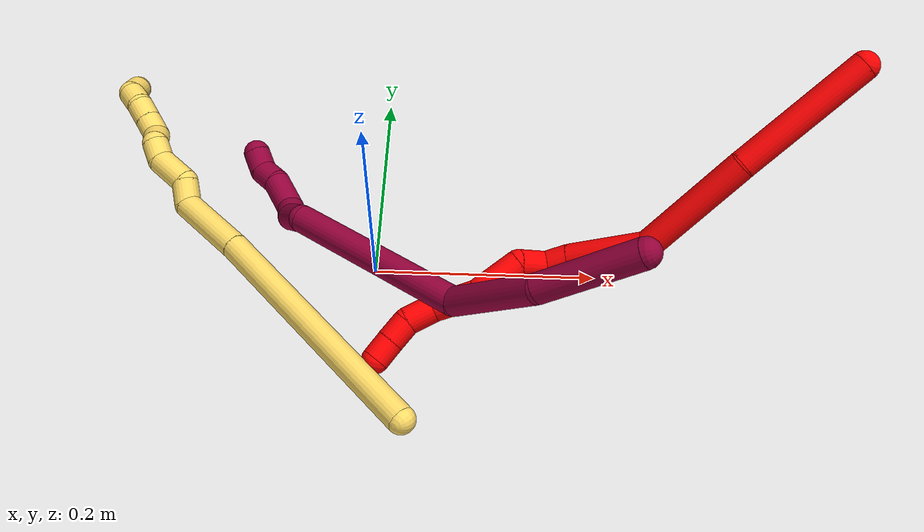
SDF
<sdf version="1.7">
 <world name="default">
  <model name="photoneo_s_sensor">
   <static>1</static>
   <pose>0 0 2 1.57079 1.57079 3.14159</pose>
   <link name="link">
    <inertial><mass>0.1</mass></inertial>
    <sensor name="sensor" type="depth">
     <update_rate>30</update_rate>
     <camera>
      <horizontal_fov>1.22</horizontal_fov>
      <image><width>1920</width><height>1200</height><format>B8G8R8</format></image>
      <clip><near>0.1</near><far>4</far></clip>
      <depth_camera><output>points</output></depth_camera>
     </camera>
     <plugin name="camera_plugin" filename="libgazebo_ros_depth_camera.so">
      <baseline>0.2</baseline>
      <alwaysOn>1</alwaysOn>
      <updateRate>0.0</updateRate>
      <cameraName>camera_ir</cameraName>
      <imageTopicName>/camera/color/image_raw</imageTopicName>
      <cameraInfoTopicName>/camera/color/camera_info</cameraInfoTopicName>
      <depthImageTopicName>/camera/depth/image_raw</depthImageTopicName>
      <depthImageCameraInfoTopicName>/camera/depth/camera_info</depthImageCameraInfoTopicName>
      <pointCloudTopicName>/camera/depth/points</pointCloudTopicName>
      <frameName>fr_optical</frameName>
      <pointCloudCutoff>0.1</pointCloudCutoff>
      <pointCloudCutoffMax>2.0</pointCloudCutoffMax>
      <distortionK1>0</distortionK1>
      <distortionK2>0</distortionK2>
      <distortionK3>0</distortionK3>
      <distortionT1>0</distortionT1>
      <distortionT2>0</distortionT2>
      <CxPrime>0</CxPrime>
      <Cx>0</Cx>
      <Cy>0</Cy>
      <focalLength>0</focalLength>
      <hackBaseline>0</hackBaseline>
     </plugin>
    </sensor>
   </link>
  </model>
  <model name="bin">
   <static>1</static>
   <link name="bottom">
    <collision name="collision-bottom">
     <pose>0 0 -0.01 0 -0 0</pose>
     <geometry><box><size>0.8 0.6 0.02</size></box></geometry>
     <surface>
      <friction><ode><mu>100</mu><mu2>100</mu2></ode></friction>
      <contact><collide_bitmask>65535</collide_bitmask></contact>
     </surface>
    </collision>
   </link>
   <link name="west_wall">
    <collision name="collision-west_wall">
     <pose>-0.41 0 0.1 0 -0 0</pose>
     <geometry><box><size>0.02 0.6 0.2</size></box></geometry>
     <surface>
      <friction><ode><mu>100</mu><mu2>100</mu2></ode></friction>
      <contact><collide_bitmask>65535</collide_bitmask></contact>
     </surface>
    </collision>
   </link>
   <link name="east_wall">
    <collision name="collision-east_wall">
     <pose>0.41 0 0.1 0 -0 0</pose>
     <geometry><box><size>0.02 0.6 0.2</size></box></geometry>
     <surface>
      <friction><ode><mu>100</mu><mu2>100</mu2></ode></friction>
      <contact><collide_bitmask>65535</collide_bitmask></contact>
     </surface>
    </collision>
   </link>
   <link name="south_wall">
    <collision name="collision-south_wall">
     <pose>0 -0.31 0.1 0 -0 0</pose>
     <geometry><box><size>0.8 0.02 0.2</size></box></geometry>
     <surface>
      <friction><ode><mu>100</mu><mu2>100</mu2></ode></friction>
      <contact><collide_bitmask>65535</collide_bitmask></contact>
     </surface>
    </collision>
   </link>
   <link name="north_wall">
    <collision name="collision-north_wall">
     <pose>0 0.31 0.1 0 -0 0</pose>
     <geometry><box><size>0.8 0.02 0.2</size></box></geometry>
     <surface>
      <friction><ode><mu>100</mu><mu2>100</mu2></ode></friction>
      <contact><collide_bitmask>65535</collide_bitmask></contact>
     </surface>
    </collision>
   </link>
  </model>
  <model name="2">
   <static>0</static>
   <link name="2">
    <collision name="collision-cylinder-e_1_1_4">
     <pose>-0.027574 -0.014832 -0.052917 2.86832 -0.465045 -2.0895</pose>
     <geometry><cylinder><radius>0.0125</radius><length>0.122972</length></cylinder></geometry>
     <surface>
      <friction><ode><mu>1.16</mu><mu2>1.16</mu2><slip1>0</slip1><slip2>0</slip2></ode></friction>
      <contact><ode><kp>1e+06</kp><kd>1</kd><max_vel>0</max_vel><min_depth>0.001</min_depth></ode></contact>
     </surface>
    </collision>
    <visual name="visual-cylinder-e_1_1_4">
     <pose>-0.027574 -0.014832 -0.052917 2.86832 -0.465045 -2.0895</pose>
     <geometry><cylinder><radius>0.0125</radius><length>0.122972</length></cylinder></geometry>
     <material><ambient>1 0 0 1</ambient></material>
    </visual>
    <collision name="collision-cylinder-e_2_4_5">
     <pose>-0.076018 -0.033018 -0.153316 3.07107 -0.413194 -2.80812</pose>
     <geometry><cylinder><radius>0.0125</radius><length>0.10395</length></cylinder></geometry>
     <surface>
      <friction><ode><mu>1.16</mu><mu2>1.16</mu2><slip1>0</slip1><slip2>0</slip2></ode></friction>
      <contact><ode><kp>1e+06</kp><kd>1</kd><max_vel>0</max_vel><min_depth>0.001</min_depth></ode></contact>
     </surface>
    </collision>
    <visual name="visual-cylinder-e_2_4_5">
     <pose>-0.076018 -0.033018 -0.153316 3.07107 -0.413194 -2.80812</pose>
     <geometry><cylinder><radius>0.0125</radius><length>0.10395</length></cylinder></geometry>
     <material><ambient>1 0 0 1</ambient></material>
    </visual>
    <collision name="collision-cylinder-e_3_5_6">
     <pose>-0.124216 -0.03178 -0.22215 -2.92974 -0.896573 2.70645</pose>
     <geometry><cylinder><radius>0.0125</radius><length>0.069964</length></cylinder></geometry>
     <surface>
      <friction><ode><mu>1.16</mu><mu2>1.16</mu2><slip1>0</slip1><slip2>0</slip2></ode></friction>
      <contact><ode><kp>1e+06</kp><kd>1</kd><max_vel>0</max_vel><min_depth>0.001</min_depth></ode></contact>
     </surface>
    </collision>
    <visual name="visual-cylinder-e_3_5_6">
     <pose>-0.124216 -0.03178 -0.22215 -2.92974 -0.896573 2.70645</pose>
     <geometry><cylinder><radius>0.0125</radius><length>0.069964</length></cylinder></geometry>
     <material><ambient>1 0 0 1</ambient></material>
    </visual>
    <collision name="collision-cylinder-e_4_6_7">
     <pose>-0.15955 -0.02721 -0.251142 3.13864 -0.808717 -3.13469</pose>
     <geometry><cylinder><radius>0.0125</radius><length>0.022136</length></cylinder></geometry>
     <surface>
      <friction><ode><mu>1.16</mu><mu2>1.16</mu2><slip1>0</slip1><slip2>0</slip2></ode></friction>
      <contact><ode><kp>1e+06</kp><kd>1</kd><max_vel>0</max_vel><min_depth>0.001</min_depth></ode></contact>
     </surface>
    </collision>
    <visual name="visual-cylinder-e_4_6_7">
     <pose>-0.15955 -0.02721 -0.251142 3.13864 -0.808717 -3.13469</pose>
     <geometry><cylinder><radius>0.0125</radius><length>0.022136</length></cylinder></geometry>
     <material><ambient>1 0 0 1</ambient></material>
    </visual>
    <collision name="collision-cylinder-e_5_7_8">
     <pose>-0.17903 -0.033687 -0.260366 1.81124 -1.04582 -1.26746</pose>
     <geometry><cylinder><radius>0.0125</radius><length>0.026519</length></cylinder></geometry>
     <surface>
      <friction><ode><mu>1.16</mu><mu2>1.16</mu2><slip1>0</slip1><slip2>0</slip2></ode></friction>
      <contact><ode><kp>1e+06</kp><kd>1</kd><max_vel>0</max_vel><min_depth>0.001</min_depth></ode></contact>
     </surface>
    </collision>
    <visual name="visual-cylinder-e_5_7_8">
     <pose>-0.17903 -0.033687 -0.260366 1.81124 -1.04582 -1.26746</pose>
     <geometry><cylinder><radius>0.0125</radius><length>0.026519</length></cylinder></geometry>
     <material><ambient>1 0 0 1</ambient></material>
    </visual>
    <collision name="collision-cylinder-e_6_8_9">
     <pose>-0.201649 -0.050574 -0.2782 2.5709 -0.52342 -1.47999</pose>
     <geometry><cylinder><radius>0.0125</radius><length>0.044593</length></cylinder></geometry>
     <surface>
      <friction><ode><mu>1.16</mu><mu2>1.16</mu2><slip1>0</slip1><slip2>0</slip2></ode></friction>
      <contact><ode><kp>1e+06</kp><kd>1</kd><max_vel>0</max_vel><min_depth>0.001</min_depth></ode></contact>
     </surface>
    </collision>
    <visual name="visual-cylinder-e_6_8_9">
     <pose>-0.201649 -0.050574 -0.2782 2.5709 -0.52342 -1.47999</pose>
     <geometry><cylinder><radius>0.0125</radius><length>0.044593</length></cylinder></geometry>
     <material><ambient>1 0 0 1</ambient></material>
    </visual>
    <collision name="collision-cylinder-e_7_9_10">
     <pose>-0.227696 -0.063335 -0.308081 2.97234 -0.822768 -2.7575</pose>
     <geometry><cylinder><radius>0.0125</radius><length>0.040659</length></cylinder></geometry>
     <surface>
      <friction><ode><mu>1.16</mu><mu2>1.16</mu2><slip1>0</slip1><slip2>0</slip2></ode></friction>
      <contact><ode><kp>1e+06</kp><kd>1</kd><max_vel>0</max_vel><min_depth>0.001</min_depth></ode></contact>
     </surface>
    </collision>
    <visual name="visual-cylinder-e_7_9_10">
     <pose>-0.227696 -0.063335 -0.308081 2.97234 -0.822768 -2.7575</pose>
     <geometry><cylinder><radius>0.0125</radius><length>0.040659</length></cylinder></geometry>
     <material><ambient>1 0 0 1</ambient></material>
    </visual>
    <collision name="collision-cylinder-e_8_10_11">
     <pose>-0.250984 -0.071261 -0.330193 2.55835 -0.689914 -1.74968</pose>
     <geometry><cylinder><radius>0.0125</radius><length>0.026351</length></cylinder></geometry>
     <surface>
      <friction><ode><mu>1.16</mu><mu2>1.16</mu2><slip1>0</slip1><slip2>0</slip2></ode></friction>
      <contact><ode><kp>1e+06</kp><kd>1</kd><max_vel>0</max_vel><min_depth>0.001</min_depth></ode></contact>
     </surface>
    </collision>
    <visual name="visual-cylinder-e_8_10_11">
     <pose>-0.250984 -0.071261 -0.330193 2.55835 -0.689914 -1.74968</pose>
     <geometry><cylinder><radius>0.0125</radius><length>0.026351</length></cylinder></geometry>
     <material><ambient>1 0 0 1</ambient></material>
    </visual>
    <collision name="collision-cylinder-e_9_11_12">
     <pose>-0.262471 -0.082412 -0.347653 2.58753 -0.285797 -0.93688</pose>
     <geometry><cylinder><radius>0.0125</radius><length>0.022006</length></cylinder></geometry>
     <surface>
      <friction><ode><mu>1.16</mu><mu2>1.16</mu2><slip1>0</slip1><slip2>0</slip2></ode></friction>
      <contact><ode><kp>1e+06</kp><kd>1</kd><max_vel>0</max_vel><min_depth>0.001</min_depth></ode></contact>
     </surface>
    </collision>
    <visual name="visual-cylinder-e_9_11_12">
     <pose>-0.262471 -0.082412 -0.347653 2.58753 -0.285797 -0.93688</pose>
     <geometry><cylinder><radius>0.0125</radius><length>0.022006</length></cylinder></geometry>
     <material><ambient>1 0 0 1</ambient></material>
    </visual>
    <collision name="collision-cylinder-e_10_12_2">
     <pose>-0.268248 -0.093642 -0.364956 2.54327 -0.259473 -0.8004</pose>
     <geometry><cylinder><radius>0.0125</radius><length>0.020852</length></cylinder></geometry>
     <surface>
      <friction><ode><mu>1.16</mu><mu2>1.16</mu2><slip1>0</slip1><slip2>0</slip2></ode></friction>
      <contact><ode><kp>1e+06</kp><kd>1</kd><max_vel>0</max_vel><min_depth>0.001</min_depth></ode></contact>
     </surface>
    </collision>
    <visual name="visual-cylinder-e_10_12_2">
     <pose>-0.268248 -0.093642 -0.364956 2.54327 -0.259473 -0.8004</pose>
     <geometry><cylinder><radius>0.0125</radius><length>0.020852</length></cylinder></geometry>
     <material><ambient>1 0 0 1</ambient></material>
    </visual>
    <collision name="collision-sphere-2">
     <pose>-0.270923 -0.099318 -0.373282 0 -0 0</pose>
     <geometry><sphere><radius>0.0125</radius></sphere></geometry>
     <surface>
      <friction><ode><mu>1.16</mu><mu2>1.16</mu2><slip1>0</slip1><slip2>0</slip2></ode></friction>
      <contact><ode><kp>1e+06</kp><kd>1</kd><max_vel>0</max_vel><min_depth>0.001</min_depth></ode></contact>
     </surface>
    </collision>
    <visual name="visual-sphere-2">
     <pose>-0.270923 -0.099318 -0.373282 0 -0 0</pose>
     <geometry><sphere><radius>0.0125</radius></sphere></geometry>
     <material><ambient>1 0 0 1</ambient></material>
    </visual>
    <collision name="collision-sphere-12">
     <pose>-0.265573 -0.087966 -0.35663 0 -0 0</pose>
     <geometry><sphere><radius>0.0125</radius></sphere></geometry>
     <surface>
      <friction><ode><mu>1.16</mu><mu2>1.16</mu2><slip1>0</slip1><slip2>0</slip2></ode></friction>
      <contact><ode><kp>1e+06</kp><kd>1</kd><max_vel>0</max_vel><min_depth>0.001</min_depth></ode></contact>
     </surface>
    </collision>
    <visual name="visual-sphere-12">
     <pose>-0.265573 -0.087966 -0.35663 0 -0 0</pose>
     <geometry><sphere><radius>0.0125</radius></sphere></geometry>
     <material><ambient>1 0 0 1</ambient></material>
    </visual>
    <collision name="collision-sphere-11">
     <pose>-0.259369 -0.076858 -0.338675 0 -0 0</pose>
     <geometry><sphere><radius>0.0125</radius></sphere></geometry>
     <surface>
      <friction><ode><mu>1.16</mu><mu2>1.16</mu2><slip1>0</slip1><slip2>0</slip2></ode></friction>
      <contact><ode><kp>1e+06</kp><kd>1</kd><max_vel>0</max_vel><min_depth>0.001</min_depth></ode></contact>
     </surface>
    </collision>
    <visual name="visual-sphere-11">
     <pose>-0.259369 -0.076858 -0.338675 0 -0 0</pose>
     <geometry><sphere><radius>0.0125</radius></sphere></geometry>
     <material><ambient>1 0 0 1</ambient></material>
    </visual>
    <collision name="collision-sphere-10">
     <pose>-0.242598 -0.065665 -0.321711 0 -0 0</pose>
     <geometry><sphere><radius>0.0125</radius></sphere></geometry>
     <surface>
      <friction><ode><mu>1.16</mu><mu2>1.16</mu2><slip1>0</slip1><slip2>0</slip2></ode></friction>
      <contact><ode><kp>1e+06</kp><kd>1</kd><max_vel>0</max_vel><min_depth>0.001</min_depth></ode></contact>
     </surface>
    </collision>
    <visual name="visual-sphere-10">
     <pose>-0.242598 -0.065665 -0.321711 0 -0 0</pose>
     <geometry><sphere><radius>0.0125</radius></sphere></geometry>
     <material><ambient>1 0 0 1</ambient></material>
    </visual>
    <collision name="collision-sphere-9">
     <pose>-0.212794 -0.061006 -0.294451 0 -0 0</pose>
     <geometry><sphere><radius>0.0125</radius></sphere></geometry>
     <surface>
      <friction><ode><mu>1.16</mu><mu2>1.16</mu2><slip1>0</slip1><slip2>0</slip2></ode></friction>
      <contact><ode><kp>1e+06</kp><kd>1</kd><max_vel>0</max_vel><min_depth>0.001</min_depth></ode></contact>
     </surface>
    </collision>
    <visual name="visual-sphere-9">
     <pose>-0.212794 -0.061006 -0.294451 0 -0 0</pose>
     <geometry><sphere><radius>0.0125</radius></sphere></geometry>
     <material><ambient>1 0 0 1</ambient></material>
    </visual>
    <collision name="collision-sphere-4">
     <pose>-0.055148 -0.029664 -0.105834 0 -0 0</pose>
     <geometry><sphere><radius>0.0125</radius></sphere></geometry>
     <surface>
      <friction><ode><mu>1.16</mu><mu2>1.16</mu2><slip1>0</slip1><slip2>0</slip2></ode></friction>
      <contact><ode><kp>1e+06</kp><kd>1</kd><max_vel>0</max_vel><min_depth>0.001</min_depth></ode></contact>
     </surface>
    </collision>
    <visual name="visual-sphere-4">
     <pose>-0.055148 -0.029664 -0.105834 0 -0 0</pose>
     <geometry><sphere><radius>0.0125</radius></sphere></geometry>
     <material><ambient>1 0 0 1</ambient></material>
    </visual>
    <collision name="collision-sphere-1">
     <geometry><sphere><radius>0.0125</radius></sphere></geometry>
     <surface>
      <friction><ode><mu>1.16</mu><mu2>1.16</mu2><slip1>0</slip1><slip2>0</slip2></ode></friction>
      <contact><ode><kp>1e+06</kp><kd>1</kd><max_vel>0</max_vel><min_depth>0.001</min_depth></ode></contact>
     </surface>
    </collision>
    <visual name="visual-sphere-1">
     <geometry><sphere><radius>0.0125</radius></sphere></geometry>
     <material><ambient>1 0 0 1</ambient></material>
    </visual>
    <collision name="collision-sphere-8">
     <pose>-0.190504 -0.040141 -0.261949 0 -0 0</pose>
     <geometry><sphere><radius>0.0125</radius></sphere></geometry>
     <surface>
      <friction><ode><mu>1.16</mu><mu2>1.16</mu2><slip1>0</slip1><slip2>0</slip2></ode></friction>
      <contact><ode><kp>1e+06</kp><kd>1</kd><max_vel>0</max_vel><min_depth>0.001</min_depth></ode></contact>
     </surface>
    </collision>
    <visual name="visual-sphere-8">
     <pose>-0.190504 -0.040141 -0.261949 0 -0 0</pose>
     <geometry><sphere><radius>0.0125</radius></sphere></geometry>
     <material><ambient>1 0 0 1</ambient></material>
    </visual>
    <collision name="collision-sphere-5">
     <pose>-0.096888 -0.036372 -0.200799 0 -0 0</pose>
     <geometry><sphere><radius>0.0125</radius></sphere></geometry>
     <surface>
      <friction><ode><mu>1.16</mu><mu2>1.16</mu2><slip1>0</slip1><slip2>0</slip2></ode></friction>
      <contact><ode><kp>1e+06</kp><kd>1</kd><max_vel>0</max_vel><min_depth>0.001</min_depth></ode></contact>
     </surface>
    </collision>
    <visual name="visual-sphere-5">
     <pose>-0.096888 -0.036372 -0.200799 0 -0 0</pose>
     <geometry><sphere><radius>0.0125</radius></sphere></geometry>
     <material><ambient>1 0 0 1</ambient></material>
    </visual>
    <collision name="collision-sphere-6">
     <pose>-0.151543 -0.027188 -0.2435 0 -0 0</pose>
     <geometry><sphere><radius>0.0125</radius></sphere></geometry>
     <surface>
      <friction><ode><mu>1.16</mu><mu2>1.16</mu2><slip1>0</slip1><slip2>0</slip2></ode></friction>
      <contact><ode><kp>1e+06</kp><kd>1</kd><max_vel>0</max_vel><min_depth>0.001</min_depth></ode></contact>
     </surface>
    </collision>
    <visual name="visual-sphere-6">
     <pose>-0.151543 -0.027188 -0.2435 0 -0 0</pose>
     <geometry><sphere><radius>0.0125</radius></sphere></geometry>
     <material><ambient>1 0 0 1</ambient></material>
    </visual>
    <collision name="collision-sphere-7">
     <pose>-0.167556 -0.027233 -0.258784 0 -0 0</pose>
     <geometry><sphere><radius>0.0125</radius></sphere></geometry>
     <surface>
      <friction><ode><mu>1.16</mu><mu2>1.16</mu2><slip1>0</slip1><slip2>0</slip2></ode></friction>
      <contact><ode><kp>1e+06</kp><kd>1</kd><max_vel>0</max_vel><min_depth>0.001</min_depth></ode></contact>
     </surface>
    </collision>
    <visual name="visual-sphere-7">
     <pose>-0.167556 -0.027233 -0.258784 0 -0 0</pose>
     <geometry><sphere><radius>0.0125</radius></sphere></geometry>
     <material><ambient>1 0 0 1</ambient></material>
    </visual>
    <inertial>
     <pose>-0.128992 -0.038899 -0.198688 0 -0 0</pose>
     <mass>0.5</mass>
     <inertia><ixx>-0.000358</ixx><ixy>0</ixy><ixz>0</ixz><iyy>6e-05</iyy><iyz>0</iyz><izz>0.000172</izz></inertia>
    </inertial>
   </link>
   <pose>0.398593 0.073394 0.212861 -0.586814 0.18581 -0.331564</pose>
  </model>
  <model name="5">
   <static>0</static>
   <link name="5">
    <collision name="collision-cylinder-e_1_1_4">
     <pose>-0.086309 0.079502 -0.036324 -1.99937 -0.779076 1.13706</pose>
     <geometry><cylinder><radius>0.0125</radius><length>0.245677</length></cylinder></geometry>
     <surface>
      <friction><ode><mu>1.16</mu><mu2>1.16</mu2><slip1>0</slip1><slip2>0</slip2></ode></friction>
      <contact><ode><kp>1e+06</kp><kd>1</kd><max_vel>0</max_vel><min_depth>0.001</min_depth></ode></contact>
     </surface>
    </collision>
    <visual name="visual-cylinder-e_1_1_4">
     <pose>-0.086309 0.079502 -0.036324 -1.99937 -0.779076 1.13706</pose>
     <geometry><cylinder><radius>0.0125</radius><length>0.245677</length></cylinder></geometry>
     <material><ambient>1 0.858824 0.4 1</ambient></material>
    </visual>
    <collision name="collision-cylinder-e_2_4_5">
     <pose>-0.200104 0.182797 -0.081703 -1.93446 -0.823689 1.12959</pose>
     <geometry><cylinder><radius>0.0125</radius><length>0.074928</length></cylinder></geometry>
     <surface>
      <friction><ode><mu>1.16</mu><mu2>1.16</mu2><slip1>0</slip1><slip2>0</slip2></ode></friction>
      <contact><ode><kp>1e+06</kp><kd>1</kd><max_vel>0</max_vel><min_depth>0.001</min_depth></ode></contact>
     </surface>
    </collision>
    <visual name="visual-cylinder-e_2_4_5">
     <pose>-0.200104 0.182797 -0.081703 -1.93446 -0.823689 1.12959</pose>
     <geometry><cylinder><radius>0.0125</radius><length>0.074928</length></cylinder></geometry>
     <material><ambient>1 0.858824 0.4 1</ambient></material>
    </visual>
    <collision name="collision-cylinder-e_3_5_6">
     <pose>-0.228569 0.217015 -0.096042 -2.03984 -0.083621 0.135991</pose>
     <geometry><cylinder><radius>0.0125</radius><length>0.023457</length></cylinder></geometry>
     <surface>
      <friction><ode><mu>1.16</mu><mu2>1.16</mu2><slip1>0</slip1><slip2>0</slip2></ode></friction>
      <contact><ode><kp>1e+06</kp><kd>1</kd><max_vel>0</max_vel><min_depth>0.001</min_depth></ode></contact>
     </surface>
    </collision>
    <visual name="visual-cylinder-e_3_5_6">
     <pose>-0.228569 0.217015 -0.096042 -2.03984 -0.083621 0.135991</pose>
     <geometry><cylinder><radius>0.0125</radius><length>0.023457</length></cylinder></geometry>
     <material><ambient>1 0.858824 0.4 1</ambient></material>
    </visual>
    <collision name="collision-cylinder-e_4_6_7">
     <pose>-0.241725 0.240346 -0.104031 -1.77753 -0.745586 0.897658</pose>
     <geometry><cylinder><radius>0.0125</radius><length>0.035897</length></cylinder></geometry>
     <surface>
      <friction><ode><mu>1.16</mu><mu2>1.16</mu2><slip1>0</slip1><slip2>0</slip2></ode></friction>
      <contact><ode><kp>1e+06</kp><kd>1</kd><max_vel>0</max_vel><min_depth>0.001</min_depth></ode></contact>
     </surface>
    </collision>
    <visual name="visual-cylinder-e_4_6_7">
     <pose>-0.241725 0.240346 -0.104031 -1.77753 -0.745586 0.897658</pose>
     <geometry><cylinder><radius>0.0125</radius><length>0.035897</length></cylinder></geometry>
     <material><ambient>1 0.858824 0.4 1</ambient></material>
    </visual>
    <collision name="collision-cylinder-e_5_7_8">
     <pose>-0.257011 0.261833 -0.110848 -2.01749 -0.315802 0.495257</pose>
     <geometry><cylinder><radius>0.0125</radius><length>0.020019</length></cylinder></geometry>
     <surface>
      <friction><ode><mu>1.16</mu><mu2>1.16</mu2><slip1>0</slip1><slip2>0</slip2></ode></friction>
      <contact><ode><kp>1e+06</kp><kd>1</kd><max_vel>0</max_vel><min_depth>0.001</min_depth></ode></contact>
     </surface>
    </collision>
    <visual name="visual-cylinder-e_5_7_8">
     <pose>-0.257011 0.261833 -0.110848 -2.01749 -0.315802 0.495257</pose>
     <geometry><cylinder><radius>0.0125</radius><length>0.020019</length></cylinder></geometry>
     <material><ambient>1 0.858824 0.4 1</ambient></material>
    </visual>
    <collision name="collision-cylinder-e_6_8_9">
     <pose>-0.265839 0.273169 -0.122686 -2.79917 -0.608847 2.13543</pose>
     <geometry><cylinder><radius>0.0125</radius><length>0.020001</length></cylinder></geometry>
     <surface>
      <friction><ode><mu>1.16</mu><mu2>1.16</mu2><slip1>0</slip1><slip2>0</slip2></ode></friction>
      <contact><ode><kp>1e+06</kp><kd>1</kd><max_vel>0</max_vel><min_depth>0.001</min_depth></ode></contact>
     </surface>
    </collision>
    <visual name="visual-cylinder-e_6_8_9">
     <pose>-0.265839 0.273169 -0.122686 -2.79917 -0.608847 2.13543</pose>
     <geometry><cylinder><radius>0.0125</radius><length>0.020001</length></cylinder></geometry>
     <material><ambient>1 0.858824 0.4 1</ambient></material>
    </visual>
    <collision name="collision-cylinder-e_7_9_10">
     <pose>-0.275854 0.284416 -0.133486 -1.918 -0.443949 0.622463</pose>
     <geometry><cylinder><radius>0.0125</radius><length>0.020002</length></cylinder></geometry>
     <surface>
      <friction><ode><mu>1.16</mu><mu2>1.16</mu2><slip1>0</slip1><slip2>0</slip2></ode></friction>
      <contact><ode><kp>1e+06</kp><kd>1</kd><max_vel>0</max_vel><min_depth>0.001</min_depth></ode></contact>
     </surface>
    </collision>
    <visual name="visual-cylinder-e_7_9_10">
     <pose>-0.275854 0.284416 -0.133486 -1.918 -0.443949 0.622463</pose>
     <geometry><cylinder><radius>0.0125</radius><length>0.020002</length></cylinder></geometry>
     <material><ambient>1 0.858824 0.4 1</ambient></material>
    </visual>
    <collision name="collision-cylinder-e_8_10_11">
     <pose>-0.284414 0.301476 -0.139478 -1.8991 -0.440286 0.605983</pose>
     <geometry><cylinder><radius>0.0125</radius><length>0.020012</length></cylinder></geometry>
     <surface>
      <friction><ode><mu>1.16</mu><mu2>1.16</mu2><slip1>0</slip1><slip2>0</slip2></ode></friction>
      <contact><ode><kp>1e+06</kp><kd>1</kd><max_vel>0</max_vel><min_depth>0.001</min_depth></ode></contact>
     </surface>
    </collision>
    <visual name="visual-cylinder-e_8_10_11">
     <pose>-0.284414 0.301476 -0.139478 -1.8991 -0.440286 0.605983</pose>
     <geometry><cylinder><radius>0.0125</radius><length>0.020012</length></cylinder></geometry>
     <material><ambient>1 0.858824 0.4 1</ambient></material>
    </visual>
    <collision name="collision-cylinder-e_9_11_12">
     <pose>-0.295155 0.316505 -0.146444 -2.13043 -0.704269 1.172</pose>
     <geometry><cylinder><radius>0.0125</radius><length>0.020006</length></cylinder></geometry>
     <surface>
      <friction><ode><mu>1.16</mu><mu2>1.16</mu2><slip1>0</slip1><slip2>0</slip2></ode></friction>
      <contact><ode><kp>1e+06</kp><kd>1</kd><max_vel>0</max_vel><min_depth>0.001</min_depth></ode></contact>
     </surface>
    </collision>
    <visual name="visual-cylinder-e_9_11_12">
     <pose>-0.295155 0.316505 -0.146444 -2.13043 -0.704269 1.172</pose>
     <geometry><cylinder><radius>0.0125</radius><length>0.020006</length></cylinder></geometry>
     <material><ambient>1 0.858824 0.4 1</ambient></material>
    </visual>
    <collision name="collision-cylinder-e_10_12_2">
     <pose>-0.306017 0.324056 -0.159412 -3.02001 -0.453971 2.62624</pose>
     <geometry><cylinder><radius>0.0125</radius><length>0.02</length></cylinder></geometry>
     <surface>
      <friction><ode><mu>1.16</mu><mu2>1.16</mu2><slip1>0</slip1><slip2>0</slip2></ode></friction>
      <contact><ode><kp>1e+06</kp><kd>1</kd><max_vel>0</max_vel><min_depth>0.001</min_depth></ode></contact>
     </surface>
    </collision>
    <visual name="visual-cylinder-e_10_12_2">
     <pose>-0.306017 0.324056 -0.159412 -3.02001 -0.453971 2.62624</pose>
     <geometry><cylinder><radius>0.0125</radius><length>0.02</length></cylinder></geometry>
     <material><ambient>1 0.858824 0.4 1</ambient></material>
    </visual>
    <collision name="collision-sphere-2">
     <pose>-0.310403 0.325146 -0.168332 0 -0 0</pose>
     <geometry><sphere><radius>0.0125</radius></sphere></geometry>
     <surface>
      <friction><ode><mu>1.16</mu><mu2>1.16</mu2><slip1>0</slip1><slip2>0</slip2></ode></friction>
      <contact><ode><kp>1e+06</kp><kd>1</kd><max_vel>0</max_vel><min_depth>0.001</min_depth></ode></contact>
     </surface>
    </collision>
    <visual name="visual-sphere-2">
     <pose>-0.310403 0.325146 -0.168332 0 -0 0</pose>
     <geometry><sphere><radius>0.0125</radius></sphere></geometry>
     <material><ambient>1 0.858824 0.4 1</ambient></material>
    </visual>
    <collision name="collision-sphere-12">
     <pose>-0.301632 0.322965 -0.150491 0 -0 0</pose>
     <geometry><sphere><radius>0.0125</radius></sphere></geometry>
     <surface>
      <friction><ode><mu>1.16</mu><mu2>1.16</mu2><slip1>0</slip1><slip2>0</slip2></ode></friction>
      <contact><ode><kp>1e+06</kp><kd>1</kd><max_vel>0</max_vel><min_depth>0.001</min_depth></ode></contact>
     </surface>
    </collision>
    <visual name="visual-sphere-12">
     <pose>-0.301632 0.322965 -0.150491 0 -0 0</pose>
     <geometry><sphere><radius>0.0125</radius></sphere></geometry>
     <material><ambient>1 0.858824 0.4 1</ambient></material>
    </visual>
    <collision name="collision-sphere-11">
     <pose>-0.288678 0.310045 -0.142397 0 -0 0</pose>
     <geometry><sphere><radius>0.0125</radius></sphere></geometry>
     <surface>
      <friction><ode><mu>1.16</mu><mu2>1.16</mu2><slip1>0</slip1><slip2>0</slip2></ode></friction>
      <contact><ode><kp>1e+06</kp><kd>1</kd><max_vel>0</max_vel><min_depth>0.001</min_depth></ode></contact>
     </surface>
    </collision>
    <visual name="visual-sphere-11">
     <pose>-0.288678 0.310045 -0.142397 0 -0 0</pose>
     <geometry><sphere><radius>0.0125</radius></sphere></geometry>
     <material><ambient>1 0.858824 0.4 1</ambient></material>
    </visual>
    <collision name="collision-sphere-10">
     <pose>-0.280149 0.292908 -0.136559 0 -0 0</pose>
     <geometry><sphere><radius>0.0125</radius></sphere></geometry>
     <surface>
      <friction><ode><mu>1.16</mu><mu2>1.16</mu2><slip1>0</slip1><slip2>0</slip2></ode></friction>
      <contact><ode><kp>1e+06</kp><kd>1</kd><max_vel>0</max_vel><min_depth>0.001</min_depth></ode></contact>
     </surface>
    </collision>
    <visual name="visual-sphere-10">
     <pose>-0.280149 0.292908 -0.136559 0 -0 0</pose>
     <geometry><sphere><radius>0.0125</radius></sphere></geometry>
     <material><ambient>1 0.858824 0.4 1</ambient></material>
    </visual>
    <collision name="collision-sphere-9">
     <pose>-0.271558 0.275923 -0.130413 0 -0 0</pose>
     <geometry><sphere><radius>0.0125</radius></sphere></geometry>
     <surface>
      <friction><ode><mu>1.16</mu><mu2>1.16</mu2><slip1>0</slip1><slip2>0</slip2></ode></friction>
      <contact><ode><kp>1e+06</kp><kd>1</kd><max_vel>0</max_vel><min_depth>0.001</min_depth></ode></contact>
     </surface>
    </collision>
    <visual name="visual-sphere-9">
     <pose>-0.271558 0.275923 -0.130413 0 -0 0</pose>
     <geometry><sphere><radius>0.0125</radius></sphere></geometry>
     <material><ambient>1 0.858824 0.4 1</ambient></material>
    </visual>
    <collision name="collision-sphere-4">
     <pose>-0.172618 0.159005 -0.072648 0 -0 0</pose>
     <geometry><sphere><radius>0.0125</radius></sphere></geometry>
     <surface>
      <friction><ode><mu>1.16</mu><mu2>1.16</mu2><slip1>0</slip1><slip2>0</slip2></ode></friction>
      <contact><ode><kp>1e+06</kp><kd>1</kd><max_vel>0</max_vel><min_depth>0.001</min_depth></ode></contact>
     </surface>
    </collision>
    <visual name="visual-sphere-4">
     <pose>-0.172618 0.159005 -0.072648 0 -0 0</pose>
     <geometry><sphere><radius>0.0125</radius></sphere></geometry>
     <material><ambient>1 0.858824 0.4 1</ambient></material>
    </visual>
    <collision name="collision-sphere-1">
     <geometry><sphere><radius>0.0125</radius></sphere></geometry>
     <surface>
      <friction><ode><mu>1.16</mu><mu2>1.16</mu2><slip1>0</slip1><slip2>0</slip2></ode></friction>
      <contact><ode><kp>1e+06</kp><kd>1</kd><max_vel>0</max_vel><min_depth>0.001</min_depth></ode></contact>
     </surface>
    </collision>
    <visual name="visual-sphere-1">
     <geometry><sphere><radius>0.0125</radius></sphere></geometry>
     <material><ambient>1 0.858824 0.4 1</ambient></material>
    </visual>
    <collision name="collision-sphere-8">
     <pose>-0.260119 0.270414 -0.114959 0 -0 0</pose>
     <geometry><sphere><radius>0.0125</radius></sphere></geometry>
     <surface>
      <friction><ode><mu>1.16</mu><mu2>1.16</mu2><slip1>0</slip1><slip2>0</slip2></ode></friction>
      <contact><ode><kp>1e+06</kp><kd>1</kd><max_vel>0</max_vel><min_depth>0.001</min_depth></ode></contact>
     </surface>
    </collision>
    <visual name="visual-sphere-8">
     <pose>-0.260119 0.270414 -0.114959 0 -0 0</pose>
     <geometry><sphere><radius>0.0125</radius></sphere></geometry>
     <material><ambient>1 0.858824 0.4 1</ambient></material>
    </visual>
    <collision name="collision-sphere-5">
     <pose>-0.22759 0.20659 -0.090759 0 -0 0</pose>
     <geometry><sphere><radius>0.0125</radius></sphere></geometry>
     <surface>
      <friction><ode><mu>1.16</mu><mu2>1.16</mu2><slip1>0</slip1><slip2>0</slip2></ode></friction>
      <contact><ode><kp>1e+06</kp><kd>1</kd><max_vel>0</max_vel><min_depth>0.001</min_depth></ode></contact>
     </surface>
    </collision>
    <visual name="visual-sphere-5">
     <pose>-0.22759 0.20659 -0.090759 0 -0 0</pose>
     <geometry><sphere><radius>0.0125</radius></sphere></geometry>
     <material><ambient>1 0.858824 0.4 1</ambient></material>
    </visual>
    <collision name="collision-sphere-6">
     <pose>-0.229549 0.22744 -0.101325 0 -0 0</pose>
     <geometry><sphere><radius>0.0125</radius></sphere></geometry>
     <surface>
      <friction><ode><mu>1.16</mu><mu2>1.16</mu2><slip1>0</slip1><slip2>0</slip2></ode></friction>
      <contact><ode><kp>1e+06</kp><kd>1</kd><max_vel>0</max_vel><min_depth>0.001</min_depth></ode></contact>
     </surface>
    </collision>
    <visual name="visual-sphere-6">
     <pose>-0.229549 0.22744 -0.101325 0 -0 0</pose>
     <geometry><sphere><radius>0.0125</radius></sphere></geometry>
     <material><ambient>1 0.858824 0.4 1</ambient></material>
    </visual>
    <collision name="collision-sphere-7">
     <pose>-0.253902 0.253252 -0.106738 0 -0 0</pose>
     <geometry><sphere><radius>0.0125</radius></sphere></geometry>
     <surface>
      <friction><ode><mu>1.16</mu><mu2>1.16</mu2><slip1>0</slip1><slip2>0</slip2></ode></friction>
      <contact><ode><kp>1e+06</kp><kd>1</kd><max_vel>0</max_vel><min_depth>0.001</min_depth></ode></contact>
     </surface>
    </collision>
    <visual name="visual-sphere-7">
     <pose>-0.253902 0.253252 -0.106738 0 -0 0</pose>
     <geometry><sphere><radius>0.0125</radius></sphere></geometry>
     <material><ambient>1 0.858824 0.4 1</ambient></material>
    </visual>
    <inertial>
     <pose>-0.167866 0.164375 -0.074571 0 -0 0</pose>
     <mass>0.5</mass>
     <inertia>
      <ixx>0.001201</ixx>
      <ixy>0</ixy>
      <ixz>0</ixz>
      <iyy>0.001387</iyy>
      <iyz>0</iyz>
      <izz>5.7e-05</izz>
     </inertia>
    </inertial>
   </link>
   <pose>0.036511 -0.171342 0.046795 1.03515 -0.654555 -0.200272</pose>
  </model>
  <model name="8">
   <static>0</static>
   <link name="8">
    <collision name="collision-cylinder-e_1_1_4">
     <pose>0.004455 0.0003 -0.046242 -3.1351 0.096037 -3.00665</pose>
     <geometry><cylinder><radius>0.0125</radius><length>0.092914</length></cylinder></geometry>
     <surface>
      <friction><ode><mu>1.16</mu><mu2>1.16</mu2><slip1>0</slip1><slip2>0</slip2></ode></friction>
      <contact><ode><kp>1e+06</kp><kd>1</kd><max_vel>0</max_vel><min_depth>0.001</min_depth></ode></contact>
     </surface>
    </collision>
    <visual name="visual-cylinder-e_1_1_4">
     <pose>0.004455 0.0003 -0.046242 -3.1351 0.096037 -3.00665</pose>
     <geometry><cylinder><radius>0.0125</radius><length>0.092914</length></cylinder></geometry>
     <material><ambient>0.584314 0 0.227451 1</ambient></material>
    </visual>
    <collision name="collision-cylinder-e_2_4_5">
     <pose>0.01381 0.015568 -0.136872 -2.81638 0.104228 -0.615687</pose>
     <geometry><cylinder><radius>0.0125</radius><length>0.094199</length></cylinder></geometry>
     <surface>
      <friction><ode><mu>1.16</mu><mu2>1.16</mu2><slip1>0</slip1><slip2>0</slip2></ode></friction>
      <contact><ode><kp>1e+06</kp><kd>1</kd><max_vel>0</max_vel><min_depth>0.001</min_depth></ode></contact>
     </surface>
    </collision>
    <visual name="visual-cylinder-e_2_4_5">
     <pose>0.01381 0.015568 -0.136872 -2.81638 0.104228 -0.615687</pose>
     <geometry><cylinder><radius>0.0125</radius><length>0.094199</length></cylinder></geometry>
     <material><ambient>0.584314 0 0.227451 1</ambient></material>
    </visual>
    <collision name="collision-cylinder-e_3_5_6">
     <pose>-0.022292 0.063005 -0.25219 -2.71228 -0.483926 1.69449</pose>
     <geometry><cylinder><radius>0.0125</radius><length>0.176254</length></cylinder></geometry>
     <surface>
      <friction><ode><mu>1.16</mu><mu2>1.16</mu2><slip1>0</slip1><slip2>0</slip2></ode></friction>
      <contact><ode><kp>1e+06</kp><kd>1</kd><max_vel>0</max_vel><min_depth>0.001</min_depth></ode></contact>
     </surface>
    </collision>
    <visual name="visual-cylinder-e_3_5_6">
     <pose>-0.022292 0.063005 -0.25219 -2.71228 -0.483926 1.69449</pose>
     <geometry><cylinder><radius>0.0125</radius><length>0.176254</length></cylinder></geometry>
     <material><ambient>0.584314 0 0.227451 1</ambient></material>
    </visual>
    <collision name="collision-cylinder-e_4_6_7">
     <pose>-0.060915 0.108334 -0.337317 -2.40568 0.123576 -0.318242</pose>
     <geometry><cylinder><radius>0.0125</radius><length>0.038605</length></cylinder></geometry>
     <surface>
      <friction><ode><mu>1.16</mu><mu2>1.16</mu2><slip1>0</slip1><slip2>0</slip2></ode></friction>
      <contact><ode><kp>1e+06</kp><kd>1</kd><max_vel>0</max_vel><min_depth>0.001</min_depth></ode></contact>
     </surface>
    </collision>
    <visual name="visual-cylinder-e_4_6_7">
     <pose>-0.060915 0.108334 -0.337317 -2.40568 0.123576 -0.318242</pose>
     <geometry><cylinder><radius>0.0125</radius><length>0.038605</length></cylinder></geometry>
     <material><ambient>0.584314 0 0.227451 1</ambient></material>
    </visual>
    <collision name="collision-cylinder-e_5_7_8">
     <pose>-0.059182 0.130449 -0.356336 -2.05095 -0.061838 0.101872</pose>
     <geometry><cylinder><radius>0.0125</radius><length>0.020914</length></cylinder></geometry>
     <surface>
      <friction><ode><mu>1.16</mu><mu2>1.16</mu2><slip1>0</slip1><slip2>0</slip2></ode></friction>
      <contact><ode><kp>1e+06</kp><kd>1</kd><max_vel>0</max_vel><min_depth>0.001</min_depth></ode></contact>
     </surface>
    </collision>
    <visual name="visual-cylinder-e_5_7_8">
     <pose>-0.059182 0.130449 -0.356336 -2.05095 -0.061838 0.101872</pose>
     <geometry><cylinder><radius>0.0125</radius><length>0.020914</length></cylinder></geometry>
     <material><ambient>0.584314 0 0.227451 1</ambient></material>
    </visual>
    <collision name="collision-cylinder-e_6_8_9">
     <pose>-0.071027 0.150391 -0.368968 -2.20205 -0.70226 1.25007</pose>
     <geometry><cylinder><radius>0.0125</radius><length>0.034676</length></cylinder></geometry>
     <surface>
      <friction><ode><mu>1.16</mu><mu2>1.16</mu2><slip1>0</slip1><slip2>0</slip2></ode></friction>
      <contact><ode><kp>1e+06</kp><kd>1</kd><max_vel>0</max_vel><min_depth>0.001</min_depth></ode></contact>
     </surface>
    </collision>
    <visual name="visual-cylinder-e_6_8_9">
     <pose>-0.071027 0.150391 -0.368968 -2.20205 -0.70226 1.25007</pose>
     <geometry><cylinder><radius>0.0125</radius><length>0.034676</length></cylinder></geometry>
     <material><ambient>0.584314 0 0.227451 1</ambient></material>
    </visual>
    <collision name="collision-cylinder-e_7_9_10">
     <pose>-0.087576 0.166592 -0.384582 -2.52624 -0.510331 1.3747</pose>
     <geometry><cylinder><radius>0.0125</radius><length>0.021902</length></cylinder></geometry>
     <surface>
      <friction><ode><mu>1.16</mu><mu2>1.16</mu2><slip1>0</slip1><slip2>0</slip2></ode></friction>
      <contact><ode><kp>1e+06</kp><kd>1</kd><max_vel>0</max_vel><min_depth>0.001</min_depth></ode></contact>
     </surface>
    </collision>
    <visual name="visual-cylinder-e_7_9_10">
     <pose>-0.087576 0.166592 -0.384582 -2.52624 -0.510331 1.3747</pose>
     <geometry><cylinder><radius>0.0125</radius><length>0.021902</length></cylinder></geometry>
     <material><ambient>0.584314 0 0.227451 1</ambient></material>
    </visual>
    <collision name="collision-cylinder-e_8_10_2">
     <pose>-0.100949 0.177945 -0.395025 -1.99559 -0.897018 1.28165</pose>
     <geometry><cylinder><radius>0.0125</radius><length>0.020535</length></cylinder></geometry>
     <surface>
      <friction><ode><mu>1.16</mu><mu2>1.16</mu2><slip1>0</slip1><slip2>0</slip2></ode></friction>
      <contact><ode><kp>1e+06</kp><kd>1</kd><max_vel>0</max_vel><min_depth>0.001</min_depth></ode></contact>
     </surface>
    </collision>
    <visual name="visual-cylinder-e_8_10_2">
     <pose>-0.100949 0.177945 -0.395025 -1.99559 -0.897018 1.28165</pose>
     <geometry><cylinder><radius>0.0125</radius><length>0.020535</length></cylinder></geometry>
     <material><ambient>0.584314 0 0.227451 1</ambient></material>
    </visual>
    <collision name="collision-sphere-2">
     <pose>-0.108973 0.183782 -0.397666 0 -0 0</pose>
     <geometry><sphere><radius>0.0125</radius></sphere></geometry>
     <surface>
      <friction><ode><mu>1.16</mu><mu2>1.16</mu2><slip1>0</slip1><slip2>0</slip2></ode></friction>
      <contact><ode><kp>1e+06</kp><kd>1</kd><max_vel>0</max_vel><min_depth>0.001</min_depth></ode></contact>
     </surface>
    </collision>
    <visual name="visual-sphere-2">
     <pose>-0.108973 0.183782 -0.397666 0 -0 0</pose>
     <geometry><sphere><radius>0.0125</radius></sphere></geometry>
     <material><ambient>0.584314 0 0.227451 1</ambient></material>
    </visual>
    <collision name="collision-sphere-10">
     <pose>-0.092925 0.172108 -0.392385 0 -0 0</pose>
     <geometry><sphere><radius>0.0125</radius></sphere></geometry>
     <surface>
      <friction><ode><mu>1.16</mu><mu2>1.16</mu2><slip1>0</slip1><slip2>0</slip2></ode></friction>
      <contact><ode><kp>1e+06</kp><kd>1</kd><max_vel>0</max_vel><min_depth>0.001</min_depth></ode></contact>
     </surface>
    </collision>
    <visual name="visual-sphere-10">
     <pose>-0.092925 0.172108 -0.392385 0 -0 0</pose>
     <geometry><sphere><radius>0.0125</radius></sphere></geometry>
     <material><ambient>0.584314 0 0.227451 1</ambient></material>
    </visual>
    <collision name="collision-sphere-9">
     <pose>-0.082227 0.161076 -0.376779 0 -0 0</pose>
     <geometry><sphere><radius>0.0125</radius></sphere></geometry>
     <surface>
      <friction><ode><mu>1.16</mu><mu2>1.16</mu2><slip1>0</slip1><slip2>0</slip2></ode></friction>
      <contact><ode><kp>1e+06</kp><kd>1</kd><max_vel>0</max_vel><min_depth>0.001</min_depth></ode></contact>
     </surface>
    </collision>
    <visual name="visual-sphere-9">
     <pose>-0.082227 0.161076 -0.376779 0 -0 0</pose>
     <geometry><sphere><radius>0.0125</radius></sphere></geometry>
     <material><ambient>0.584314 0 0.227451 1</ambient></material>
    </visual>
    <collision name="collision-sphere-4">
     <pose>0.00891 0.000601 -0.092484 0 -0 0</pose>
     <geometry><sphere><radius>0.0125</radius></sphere></geometry>
     <surface>
      <friction><ode><mu>1.16</mu><mu2>1.16</mu2><slip1>0</slip1><slip2>0</slip2></ode></friction>
      <contact><ode><kp>1e+06</kp><kd>1</kd><max_vel>0</max_vel><min_depth>0.001</min_depth></ode></contact>
     </surface>
    </collision>
    <visual name="visual-sphere-4">
     <pose>0.00891 0.000601 -0.092484 0 -0 0</pose>
     <geometry><sphere><radius>0.0125</radius></sphere></geometry>
     <material><ambient>0.584314 0 0.227451 1</ambient></material>
    </visual>
    <collision name="collision-sphere-1">
     <geometry><sphere><radius>0.0125</radius></sphere></geometry>
     <surface>
      <friction><ode><mu>1.16</mu><mu2>1.16</mu2><slip1>0</slip1><slip2>0</slip2></ode></friction>
      <contact><ode><kp>1e+06</kp><kd>1</kd><max_vel>0</max_vel><min_depth>0.001</min_depth></ode></contact>
     </surface>
    </collision>
    <visual name="visual-sphere-1">
     <geometry><sphere><radius>0.0125</radius></sphere></geometry>
     <material><ambient>0.584314 0 0.227451 1</ambient></material>
    </visual>
    <collision name="collision-sphere-8">
     <pose>-0.059828 0.139706 -0.361157 0 -0 0</pose>
     <geometry><sphere><radius>0.0125</radius></sphere></geometry>
     <surface>
      <friction><ode><mu>1.16</mu><mu2>1.16</mu2><slip1>0</slip1><slip2>0</slip2></ode></friction>
      <contact><ode><kp>1e+06</kp><kd>1</kd><max_vel>0</max_vel><min_depth>0.001</min_depth></ode></contact>
     </surface>
    </collision>
    <visual name="visual-sphere-8">
     <pose>-0.059828 0.139706 -0.361157 0 -0 0</pose>
     <geometry><sphere><radius>0.0125</radius></sphere></geometry>
     <material><ambient>0.584314 0 0.227451 1</ambient></material>
    </visual>
    <collision name="collision-sphere-5">
     <pose>0.01871 0.030535 -0.181261 0 -0 0</pose>
     <geometry><sphere><radius>0.0125</radius></sphere></geometry>
     <surface>
      <friction><ode><mu>1.16</mu><mu2>1.16</mu2><slip1>0</slip1><slip2>0</slip2></ode></friction>
      <contact><ode><kp>1e+06</kp><kd>1</kd><max_vel>0</max_vel><min_depth>0.001</min_depth></ode></contact>
     </surface>
    </collision>
    <visual name="visual-sphere-5">
     <pose>0.01871 0.030535 -0.181261 0 -0 0</pose>
     <geometry><sphere><radius>0.0125</radius></sphere></geometry>
     <material><ambient>0.584314 0 0.227451 1</ambient></material>
    </visual>
    <collision name="collision-sphere-6">
     <pose>-0.063294 0.095476 -0.323119 0 -0 0</pose>
     <geometry><sphere><radius>0.0125</radius></sphere></geometry>
     <surface>
      <friction><ode><mu>1.16</mu><mu2>1.16</mu2><slip1>0</slip1><slip2>0</slip2></ode></friction>
      <contact><ode><kp>1e+06</kp><kd>1</kd><max_vel>0</max_vel><min_depth>0.001</min_depth></ode></contact>
     </surface>
    </collision>
    <visual name="visual-sphere-6">
     <pose>-0.063294 0.095476 -0.323119 0 -0 0</pose>
     <geometry><sphere><radius>0.0125</radius></sphere></geometry>
     <material><ambient>0.584314 0 0.227451 1</ambient></material>
    </visual>
    <collision name="collision-sphere-7">
     <pose>-0.058535 0.121192 -0.351515 0 -0 0</pose>
     <geometry><sphere><radius>0.0125</radius></sphere></geometry>
     <surface>
      <friction><ode><mu>1.16</mu><mu2>1.16</mu2><slip1>0</slip1><slip2>0</slip2></ode></friction>
      <contact><ode><kp>1e+06</kp><kd>1</kd><max_vel>0</max_vel><min_depth>0.001</min_depth></ode></contact>
     </surface>
    </collision>
    <visual name="visual-sphere-7">
     <pose>-0.058535 0.121192 -0.351515 0 -0 0</pose>
     <geometry><sphere><radius>0.0125</radius></sphere></geometry>
     <material><ambient>0.584314 0 0.227451 1</ambient></material>
    </visual>
    <inertial>
     <pose>-0.024515 0.064055 -0.222887 0 -0 0</pose>
     <mass>0.5</mass>
     <inertia><ixx>0.0003</ixx><ixy>0</ixy><ixz>0</ixz><iyy>0.000527</iyy><iyz>0</iyz><izz>-3e-05</izz></inertia>
    </inertial>
   </link>
   <pose>0.21527 -0.109516 0.205121 -0.653255 0.882637 -0.8324</pose>
  </model>
 </world>
</sdf>
